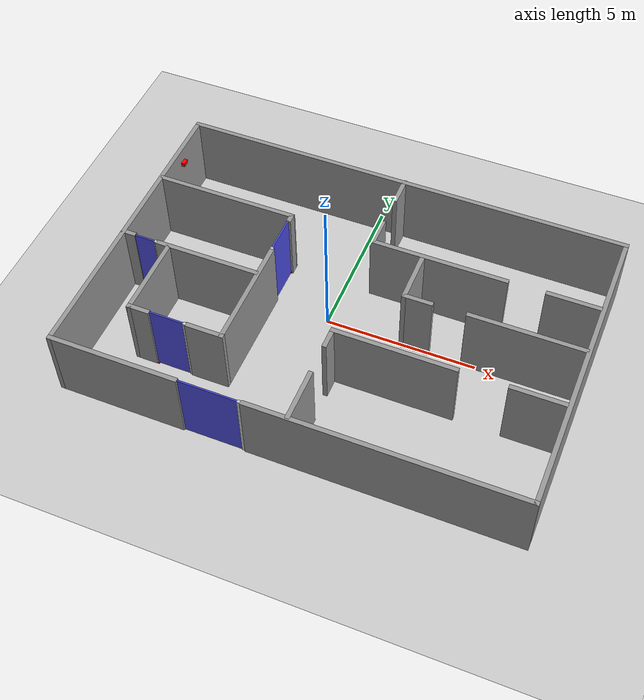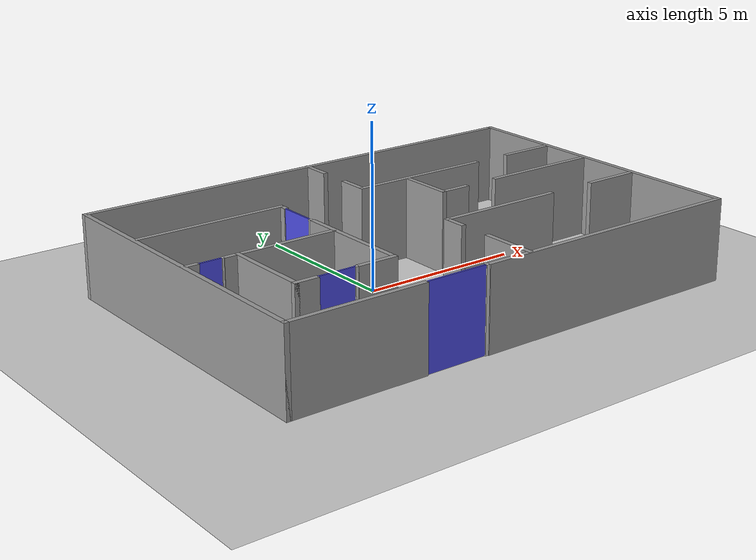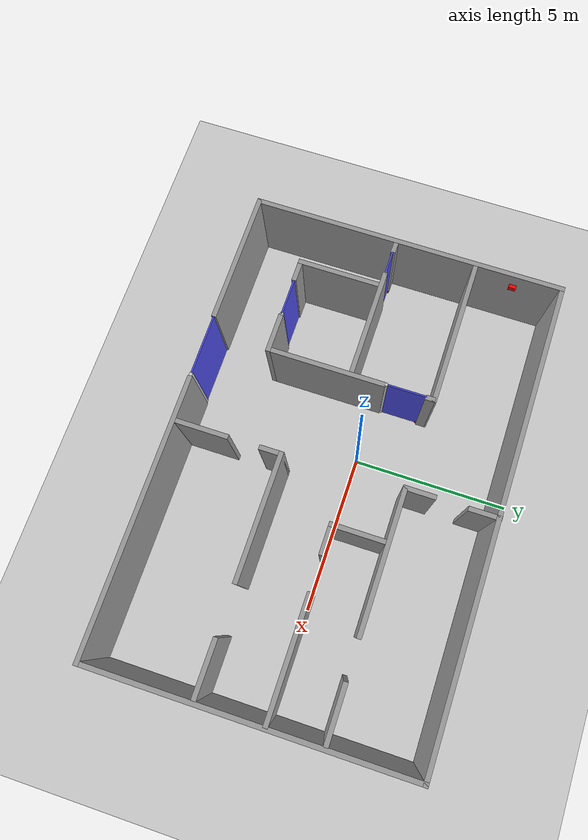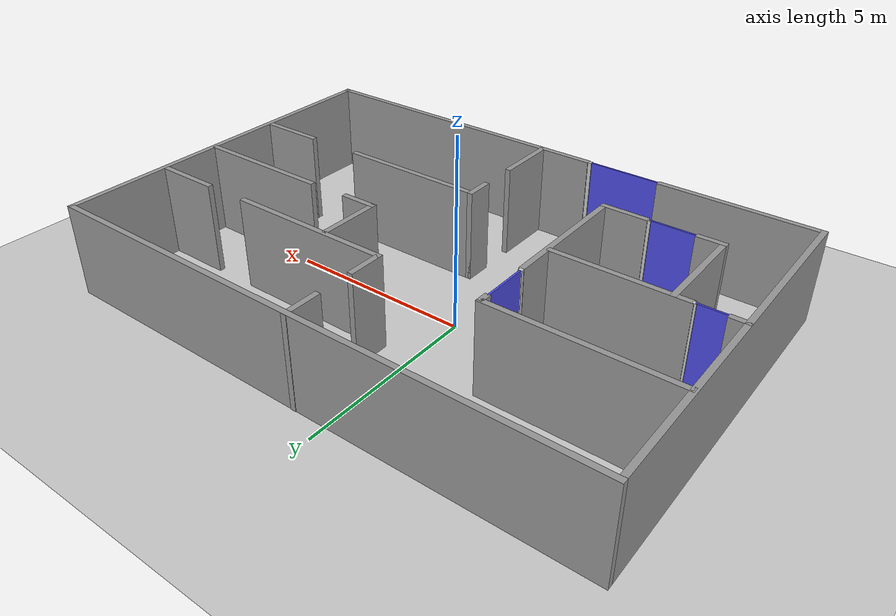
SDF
<sdf version="1.7">
 <world name="default">
  <model name="ground_plane">
   <static>1</static>
   <link name="link">
    <collision name="collision">
     <geometry><plane><normal>0 0 1</normal><size>100 100</size></plane></geometry>
     <surface><friction><ode><mu>100</mu><mu2>50</mu2></ode></friction></surface>
    </collision>
    <visual name="visual">
     <cast_shadows>0</cast_shadows>
     <geometry><plane><normal>0 0 1</normal><size>100 100</size></plane></geometry>
     <material>
      <script><uri>file://media/materials/scripts/gazebo.material</uri><name>Gazebo/Grey</name></script>
     </material>
    </visual>
   </link>
  </model>
  <model name="Edificio_Tim">
   <pose>0.861582 -0.45356 0 0 -0 0</pose>
   <link name="Wall_10">
    <collision name="Wall_10_Collision">
     <geometry><box><size>15 0.15 2.5</size></box></geometry>
     <pose>0 0 1.25 0 -0 0</pose>
    </collision>
    <visual name="Wall_10_Visual">
     <pose>0 0 1.25 0 -0 0</pose>
     <geometry><box><size>15 0.15 2.5</size></box></geometry>
     <material>
      <script><uri>file://media/materials/scripts/gazebo.material</uri><name>Gazebo/Grey</name></script>
      <ambient>1 1 1 1</ambient>
     </material>
     <meta><layer>0</layer></meta>
    </visual>
    <pose>-0 4.91887 0 0 -0 0</pose>
   </link>
   <link name="Wall_11">
    <collision name="Wall_11_Collision">
     <geometry><box><size>10 0.15 2.5</size></box></geometry>
     <pose>0 0 1.25 0 -0 0</pose>
    </collision>
    <visual name="Wall_11_Visual">
     <pose>0 0 1.25 0 -0 0</pose>
     <geometry><box><size>10 0.15 2.5</size></box></geometry>
     <material>
      <script><uri>file://media/materials/scripts/gazebo.material</uri><name>Gazebo/Grey</name></script>
      <ambient>1 1 1 1</ambient>
     </material>
     <meta><layer>0</layer></meta>
    </visual>
    <pose>7.425 -0.006132 0 0 -0 -1.5708</pose>
   </link>
   <link name="Wall_14">
    <collision name="Wall_14_Collision">
     <geometry><box><size>8.75 0.15 2.5</size></box></geometry>
     <pose>0 0 1.25 0 -0 0</pose>
    </collision>
    <visual name="Wall_14_Visual">
     <pose>0 0 1.25 0 -0 0</pose>
     <geometry><box><size>8.75 0.15 2.5</size></box></geometry>
     <material>
      <script><uri>file://media/materials/scripts/gazebo.material</uri><name>Gazebo/Grey</name></script>
      <ambient>1 1 1 1</ambient>
     </material>
     <meta><layer>0</layer></meta>
    </visual>
    <pose>3.125 -4.93113 0 0 -0 3.14159</pose>
   </link>
   <link name="Wall_16">
    <collision name="Wall_16_Collision">
     <geometry><box><size>4.75 0.15 2.5</size></box></geometry>
     <pose>0 0 1.25 0 -0 0</pose>
    </collision>
    <visual name="Wall_16_Visual">
     <pose>0 0 1.25 0 -0 0</pose>
     <geometry><box><size>4.75 0.15 2.5</size></box></geometry>
     <material>
      <script><uri>file://media/materials/scripts/gazebo.material</uri><name>Gazebo/Grey</name></script>
      <ambient>1 1 1 1</ambient>
     </material>
     <meta><layer>0</layer></meta>
    </visual>
    <pose>-5.07129 2.18819 0 0 -0 0</pose>
   </link>
   <link name="Wall_17">
    <collision name="Wall_17_Collision">
     <geometry><box><size>0.3 0.15 2.5</size></box></geometry>
     <pose>-0.3 0 1.25 0 -0 0</pose>
    </collision>
    <visual name="Wall_17_Visual">
     <pose>-0.3 0 1.25 0 -0 0</pose>
     <geometry><box><size>0.3 0.15 2.5</size></box></geometry>
     <material>
      <script><uri>file://media/materials/scripts/gazebo.material</uri><name>Gazebo/Grey</name></script>
      <ambient>1 1 1 1</ambient>
     </material>
     <meta><layer>0</layer></meta>
    </visual>
    <pose>-2.77129 1.76319 0 0 -0 -1.5708</pose>
   </link>
   <link name="Wall_19">
    <collision name="Wall_19_Collision">
     <geometry><box><size>3.75 0.15 2.5</size></box></geometry>
     <pose>0 0 1.25 0 -0 0</pose>
    </collision>
    <visual name="Wall_19_Visual">
     <pose>0 0 1.25 0 -0 0</pose>
     <geometry><box><size>3.75 0.15 2.5</size></box></geometry>
     <material>
      <script><uri>file://media/materials/scripts/gazebo.material</uri><name>Gazebo/Grey</name></script>
      <ambient>1 1 1 1</ambient>
     </material>
     <meta><layer>0</layer></meta>
    </visual>
    <pose>-2.77141 -1.2034 0 0 -0 -1.5708</pose>
   </link>
   <link name="Wall_20">
    <collision name="Wall_20_Collision">
     <geometry><box><size>1.25 0.15 2.5</size></box></geometry>
     <pose>0 0 1.25 0 -0 0</pose>
    </collision>
    <visual name="Wall_20_Visual">
     <pose>0 0 1.25 0 -0 0</pose>
     <geometry><box><size>1.25 0.15 2.5</size></box></geometry>
     <material>
      <script><uri>file://media/materials/scripts/gazebo.material</uri><name>Gazebo/Grey</name></script>
      <ambient>1 1 1 1</ambient>
     </material>
     <meta><layer>0</layer></meta>
    </visual>
    <pose>-3.3214 -3.0034 0 0 -0 3.14159</pose>
   </link>
   <link name="Wall_22">
    <collision name="Wall_22_Collision">
     <geometry><box><size>0.75 0.15 2.5</size></box></geometry>
     <pose>0 0 1.25 0 -0 0</pose>
    </collision>
    <visual name="Wall_22_Visual">
     <pose>0 0 1.25 0 -0 0</pose>
     <geometry><box><size>0.75 0.15 2.5</size></box></geometry>
     <material>
      <script><uri>file://media/materials/scripts/gazebo.material</uri><name>Gazebo/Grey</name></script>
      <ambient>1 1 1 1</ambient>
     </material>
     <meta><layer>0</layer></meta>
    </visual>
    <pose>-5.52001 -3.00636 0 0 -0 3.14159</pose>
   </link>
   <link name="Wall_30">
    <collision name="Wall_30_Collision">
     <geometry><box><size>0.5 0.15 2.5</size></box></geometry>
     <pose>0 0 1.25 0 -0 0</pose>
    </collision>
    <visual name="Wall_30_Visual">
     <pose>0 0 1.25 0 -0 0</pose>
     <geometry><box><size>0.5 0.15 2.5</size></box></geometry>
     <material>
      <script><uri>file://media/materials/scripts/gazebo.material</uri><name>Gazebo/Grey</name></script>
      <ambient>1 1 1 1</ambient>
     </material>
     <meta><layer>0</layer></meta>
    </visual>
    <pose>-7.24876 -0.382847 0 0 -0 0</pose>
   </link>
   <link name="Wall_32">
    <collision name="Wall_32_Collision">
     <geometry><box><size>3.5 0.15 2.5</size></box></geometry>
     <pose>0 0 1.25 0 -0 0</pose>
    </collision>
    <visual name="Wall_32_Visual">
     <pose>0 0 1.25 0 -0 0</pose>
     <geometry><box><size>3.5 0.15 2.5</size></box></geometry>
     <material>
      <script><uri>file://media/materials/scripts/gazebo.material</uri><name>Gazebo/Grey</name></script>
      <ambient>1 1 1 1</ambient>
     </material>
     <meta><layer>0</layer></meta>
    </visual>
    <pose>-4.52359 -0.403337 0 0 -0 0</pose>
   </link>
   <link name="Wall_34">
    <collision name="Wall_34_Collision">
     <geometry><box><size>2.75 0.15 2.5</size></box></geometry>
     <pose>0 0 1.25 0 -0 0</pose>
    </collision>
    <visual name="Wall_34_Visual">
     <pose>0 0 1.25 0 -0 0</pose>
     <geometry><box><size>2.75 0.15 2.5</size></box></geometry>
     <material>
      <script><uri>file://media/materials/scripts/gazebo.material</uri><name>Gazebo/Grey</name></script>
      <ambient>1 1 1 1</ambient>
     </material>
     <meta><layer>0</layer></meta>
    </visual>
    <pose>-5.82001 -1.70636 0 0 -0 1.5708</pose>
   </link>
   <link name="Wall_36">
    <collision name="Wall_36_Collision">
     <geometry><box><size>1.75 0.15 2.5</size></box></geometry>
     <pose>0 0 1.25 0 -0 0</pose>
    </collision>
    <visual name="Wall_36_Visual">
     <pose>0 0 1.25 0 -0 0</pose>
     <geometry><box><size>1.75 0.15 2.5</size></box></geometry>
     <material>
      <script><uri>file://media/materials/scripts/gazebo.material</uri><name>Gazebo/Grey</name></script>
      <ambient>1 1 1 1</ambient>
     </material>
     <meta><layer>0</layer></meta>
    </visual>
    <pose>0.185286 -4.08079 0 0 -0 1.5708</pose>
   </link>
   <link name="Wall_40">
    <collision name="Wall_40_Collision">
     <geometry><box><size>0.75 0.15 2.5</size></box></geometry>
     <pose>0 0 1.25 0 -0 0</pose>
    </collision>
    <visual name="Wall_40_Visual">
     <pose>0 0 1.25 0 -0 0</pose>
     <geometry><box><size>0.75 0.15 2.5</size></box></geometry>
     <material>
      <script><uri>file://media/materials/scripts/gazebo.material</uri><name>Gazebo/Grey</name></script>
      <ambient>1 1 1 1</ambient>
     </material>
     <meta><layer>0</layer></meta>
    </visual>
    <pose>0.185286 -1.88079 0 0 -0 1.5708</pose>
   </link>
   <link name="Wall_43">
    <collision name="Wall_43_Collision">
     <geometry><box><size>1.75 0.15 2.5</size></box></geometry>
     <pose>0 0 1.25 0 -0 0</pose>
    </collision>
    <visual name="Wall_43_Visual">
     <pose>0 0 1.25 0 -0 0</pose>
     <geometry><box><size>1.75 0.15 2.5</size></box></geometry>
     <material>
      <script><uri>file://media/materials/scripts/gazebo.material</uri><name>Gazebo/Grey</name></script>
      <ambient>1 1 1 1</ambient>
     </material>
     <meta><layer>0</layer></meta>
    </visual>
    <pose>6.48529 -1.58079 0 0 -0 3.14159</pose>
   </link>
   <link name="Wall_45">
    <collision name="Wall_45_Collision">
     <geometry><box><size>4 0.15 2.5</size></box></geometry>
     <pose>0 0 1.25 0 -0 0</pose>
    </collision>
    <visual name="Wall_45_Visual">
     <pose>0 0 1.25 0 -0 0</pose>
     <geometry><box><size>4 0.15 2.5</size></box></geometry>
     <material>
      <script><uri>file://media/materials/scripts/gazebo.material</uri><name>Gazebo/Grey</name></script>
      <ambient>1 1 1 1</ambient>
     </material>
     <meta><layer>0</layer></meta>
    </visual>
    <pose>2.11029 -1.58079 0 0 -0 0</pose>
   </link>
   <link name="Wall_48">
    <collision name="Wall_48_Collision">
     <geometry><box><size>1 0.15 2.5</size></box></geometry>
     <pose>0 0 1.25 0 -0 0</pose>
    </collision>
    <visual name="Wall_48_Visual">
     <pose>0 0 1.25 0 -0 0</pose>
     <geometry><box><size>1 0.15 2.5</size></box></geometry>
     <material>
      <script><uri>file://media/materials/scripts/gazebo.material</uri><name>Gazebo/Grey</name></script>
      <ambient>1 1 1 1</ambient>
     </material>
     <meta><layer>0</layer></meta>
    </visual>
    <pose>0.045366 4.50613 0 0 -0 -1.5708</pose>
   </link>
   <link name="Wall_56">
    <collision name="Wall_56_Collision">
     <geometry><box><size>1 0.15 2.5</size></box></geometry>
     <pose>0 0 1.25 0 -0 0</pose>
    </collision>
    <visual name="Wall_56_Visual">
     <pose>0 0 1.25 0 -0 0</pose>
     <geometry><box><size>1 0.15 2.5</size></box></geometry>
     <material>
      <script><uri>file://media/materials/scripts/gazebo.material</uri><name>Gazebo/Grey</name></script>
      <ambient>1 1 1 1</ambient>
     </material>
     <meta><layer>0</layer></meta>
    </visual>
    <pose>0.027876 2.56474 0 0 -0 -1.5708</pose>
   </link>
   <link name="Wall_57">
    <collision name="Wall_57_Collision">
     <geometry><box><size>4.5 0.15 2.5</size></box></geometry>
     <pose>0 0 1.25 0 -0 0</pose>
    </collision>
    <visual name="Wall_57_Visual">
     <pose>0 0 1.25 0 -0 0</pose>
     <geometry><box><size>4.5 0.15 2.5</size></box></geometry>
     <material>
      <script><uri>file://media/materials/scripts/gazebo.material</uri><name>Gazebo/Grey</name></script>
      <ambient>1 1 1 1</ambient>
     </material>
     <meta><layer>0</layer></meta>
    </visual>
    <pose>2.20288 2.13973 0 0 -0 0</pose>
   </link>
   <link name="Wall_6">
    <collision name="Wall_6_Collision">
     <geometry><box><size>10 0.15 2.5</size></box></geometry>
     <pose>0 0 1.25 0 -0 0</pose>
    </collision>
    <visual name="Wall_6_Visual">
     <pose>0 0 1.25 0 -0 0</pose>
     <geometry><box><size>10 0.15 2.5</size></box></geometry>
     <material>
      <script><uri>file://media/materials/scripts/gazebo.material</uri><name>Gazebo/Grey</name></script>
      <ambient>1 1 1 1</ambient>
     </material>
     <meta><layer>0</layer></meta>
    </visual>
    <pose>-7.425 -0.006132 0 0 -0 -1.5708</pose>
   </link>
   <link name="Wall_60">
    <collision name="Wall_60_Collision">
     <geometry><box><size>1.75 0.15 2.5</size></box></geometry>
     <pose>0 0 1.25 0 -0 0</pose>
    </collision>
    <visual name="Wall_60_Visual">
     <pose>0 0 1.25 0 -0 0</pose>
     <geometry><box><size>1.75 0.15 2.5</size></box></geometry>
     <material>
      <script><uri>file://media/materials/scripts/gazebo.material</uri><name>Gazebo/Grey</name></script>
      <ambient>1 1 1 1</ambient>
     </material>
     <meta><layer>0</layer></meta>
    </visual>
    <pose>6.49466 2.15021 0 0 -0 0</pose>
   </link>
   <link name="Wall_62">
    <collision name="Wall_62_Collision">
     <geometry><box><size>1.75 0.15 2.5</size></box></geometry>
     <pose>0 0 1.25 0 -0 0</pose>
    </collision>
    <visual name="Wall_62_Visual">
     <pose>0 0 1.25 0 -0 0</pose>
     <geometry><box><size>1.75 0.15 2.5</size></box></geometry>
     <material>
      <script><uri>file://media/materials/scripts/gazebo.material</uri><name>Gazebo/Grey</name></script>
      <ambient>1 1 1 1</ambient>
     </material>
     <meta><layer>0</layer></meta>
    </visual>
    <pose>1.68943 1.24527 0 0 -0 -1.5708</pose>
   </link>
   <link name="Wall_63">
    <collision name="Wall_63_Collision">
     <geometry><box><size>1 0.15 2.5</size></box></geometry>
     <pose>0 0 1.25 0 -0 0</pose>
    </collision>
    <visual name="Wall_63_Visual">
     <pose>0 0 1.25 0 -0 0</pose>
     <geometry><box><size>1 0.15 2.5</size></box></geometry>
     <material>
      <script><uri>file://media/materials/scripts/gazebo.material</uri><name>Gazebo/Grey</name></script>
      <ambient>1 1 1 1</ambient>
     </material>
     <meta><layer>0</layer></meta>
    </visual>
    <pose>2.11443 0.445272 0 0 -0 0</pose>
   </link>
   <link name="Wall_67">
    <collision name="Wall_67_Collision">
     <geometry><box><size>3.75 0.15 2.5</size></box></geometry>
     <pose>0 0 1.25 0 -0 0</pose>
    </collision>
    <visual name="Wall_67_Visual">
     <pose>0 0 1.25 0 -0 0</pose>
     <geometry><box><size>3.75 0.15 2.5</size></box></geometry>
     <material>
      <script><uri>file://media/materials/scripts/gazebo.material</uri><name>Gazebo/Grey</name></script>
      <ambient>1 1 1 1</ambient>
     </material>
     <meta><layer>0</layer></meta>
    </visual>
    <pose>5.53577 0.471166 0 0 -0 0</pose>
   </link>
   <link name="Wall_8">
    <collision name="Wall_8_Collision">
     <geometry><box><size>4.25 0.15 2.5</size></box></geometry>
     <pose>0 0 1.25 0 -0 0</pose>
    </collision>
    <visual name="Wall_8_Visual">
     <pose>0 0 1.25 0 -0 0</pose>
     <geometry><box><size>4.25 0.15 2.5</size></box></geometry>
     <material>
      <script><uri>file://media/materials/scripts/gazebo.material</uri><name>Gazebo/Grey</name></script>
      <ambient>1 1 1 1</ambient>
     </material>
     <meta><layer>0</layer></meta>
    </visual>
    <pose>-5.375 -4.93113 0 0 -0 0</pose>
   </link>
   <static>1</static>
  </model>
  <model name="Lidar_1">
   <link name="link_1">
    <inertial>
     <mass>0.00014111</mass>
     <inertia><ixx>7e-08</ixx><ixy>0</ixy><ixz>0</ixz><iyy>7e-08</iyy><iyz>0</iyz><izz>6e-08</izz></inertia>
    </inertial>
    <visual name="visual">
     <geometry><box><size>0.048286 0.048861 0.059852</size></box></geometry>
     <material>
      <lighting>1</lighting>
      <script><uri>file://media/materials/scripts/gazebo.material</uri><name>Gazebo/Grey</name></script>
      <shader type="pixel"><normal_map>__default__</normal_map></shader>
      <ambient>1 0 0 1</ambient>
      <diffuse>0.7 0.7 0.7 1</diffuse>
      <specular>0.01 0.01 0.01 1</specular>
      <emissive>0 0 0 1</emissive>
     </material>
    </visual>
    <collision name="collision">
     <geometry><box><size>0.048286 0.048861 0.059852</size></box></geometry>
     <surface>
      <friction>
       <ode><mu>1</mu><mu2>1</mu2><fdir1>0 0 0</fdir1><slip1>0</slip1><slip2>0</slip2></ode>
       <torsional>
        <coefficient>1</coefficient>
        <patch_radius>0</patch_radius>
        <surface_radius>0</surface_radius>
        <use_patch_radius>1</use_patch_radius>
        <ode><slip>0</slip></ode>
       </torsional>
      </friction>
      <bounce><restitution_coefficient>0</restitution_coefficient><threshold>1e+06</threshold></bounce>
      <contact>
       <collide_without_contact>0</collide_without_contact>
       <collide_without_contact_bitmask>1</collide_without_contact_bitmask>
       <collide_bitmask>1</collide_bitmask>
       <ode>
        <soft_cfm>0</soft_cfm>
        <soft_erp>0.2</soft_erp>
        <kp>1e+13</kp>
        <kd>1</kd>
        <max_vel>0.01</max_vel>
        <min_depth>0</min_depth>
       </ode>
       <bullet>
        <split_impulse>1</split_impulse>
        <split_impulse_penetration_threshold>-0.01</split_impulse_penetration_threshold>
        <soft_cfm>0</soft_cfm>
        <soft_erp>0.2</soft_erp>
        <kp>1e+13</kp>
        <kd>1</kd>
       </bullet>
      </contact>
     </surface>
    </collision>
   </link>
   <static>0</static>
   <pose>-4.25799 -3.50339 0.029927 2.6e-05 2e-06 -0.001225</pose>
  </model>
  <model name="Lidar_6">
   <link name="link_1">
    <inertial>
     <mass>0.00014111</mass>
     <inertia><ixx>7e-08</ixx><ixy>0</ixy><ixz>0</ixz><iyy>7e-08</iyy><iyz>0</iyz><izz>6e-08</izz></inertia>
    </inertial>
    <visual name="visual">
     <geometry><box><size>0.048286 0.048861 0.059852</size></box></geometry>
     <material>
      <lighting>1</lighting>
      <script><uri>file://media/materials/scripts/gazebo.material</uri><name>Gazebo/Grey</name></script>
      <shader type="pixel"><normal_map>__default__</normal_map></shader>
      <ambient>1 0 0 1</ambient>
      <diffuse>0.7 0.7 0.7 1</diffuse>
      <specular>0.01 0.01 0.01 1</specular>
      <emissive>0 0 0 1</emissive>
     </material>
    </visual>
    <collision name="collision">
     <geometry><box><size>0.048286 0.048861 0.059852</size></box></geometry>
     <surface>
      <friction>
       <ode><mu>1</mu><mu2>1</mu2><fdir1>0 0 0</fdir1><slip1>0</slip1><slip2>0</slip2></ode>
       <torsional>
        <coefficient>1</coefficient>
        <patch_radius>0</patch_radius>
        <surface_radius>0</surface_radius>
        <use_patch_radius>1</use_patch_radius>
        <ode><slip>0</slip></ode>
       </torsional>
      </friction>
      <bounce><restitution_coefficient>0</restitution_coefficient><threshold>1e+06</threshold></bounce>
      <contact>
       <collide_without_contact>0</collide_without_contact>
       <collide_without_contact_bitmask>1</collide_without_contact_bitmask>
       <collide_bitmask>1</collide_bitmask>
       <ode>
        <soft_cfm>0</soft_cfm>
        <soft_erp>0.2</soft_erp>
        <kp>1e+13</kp>
        <kd>1</kd>
        <max_vel>0.01</max_vel>
        <min_depth>0</min_depth>
       </ode>
       <bullet>
        <split_impulse>1</split_impulse>
        <split_impulse_penetration_threshold>-0.01</split_impulse_penetration_threshold>
        <soft_cfm>0</soft_cfm>
        <soft_erp>0.2</soft_erp>
        <kp>1e+13</kp>
        <kd>1</kd>
       </bullet>
      </contact>
     </surface>
    </collision>
   </link>
   <static>0</static>
   <pose>-1.90211 1.43438 0.029927 -2e-06 -2.8e-05 -1.57674</pose>
  </model>
  <model name="Lidar_8">
   <link name="link_1">
    <inertial>
     <mass>0.00014111</mass>
     <inertia><ixx>7e-08</ixx><ixy>0</ixy><ixz>0</ixz><iyy>7e-08</iyy><iyz>0</iyz><izz>6e-08</izz></inertia>
    </inertial>
    <visual name="visual">
     <geometry><box><size>0.048286 0.048861 0.059852</size></box></geometry>
     <material>
      <lighting>1</lighting>
      <script><uri>file://media/materials/scripts/gazebo.material</uri><name>Gazebo/Grey</name></script>
      <shader type="pixel"><normal_map>__default__</normal_map></shader>
      <ambient>1 0 0 1</ambient>
      <diffuse>0.7 0.7 0.7 1</diffuse>
      <specular>0.01 0.01 0.01 1</specular>
      <emissive>0 0 0 1</emissive>
     </material>
    </visual>
    <collision name="collision">
     <geometry><box><size>0.048286 0.048861 0.059852</size></box></geometry>
     <surface>
      <friction>
       <ode><mu>1</mu><mu2>1</mu2><fdir1>0 0 0</fdir1><slip1>0</slip1><slip2>0</slip2></ode>
       <torsional>
        <coefficient>1</coefficient>
        <patch_radius>0</patch_radius>
        <surface_radius>0</surface_radius>
        <use_patch_radius>1</use_patch_radius>
        <ode><slip>0</slip></ode>
       </torsional>
      </friction>
      <bounce><restitution_coefficient>0</restitution_coefficient><threshold>1e+06</threshold></bounce>
      <contact>
       <collide_without_contact>0</collide_without_contact>
       <collide_without_contact_bitmask>1</collide_without_contact_bitmask>
       <collide_bitmask>1</collide_bitmask>
       <ode>
        <soft_cfm>0</soft_cfm>
        <soft_erp>0.2</soft_erp>
        <kp>1e+13</kp>
        <kd>1</kd>
        <max_vel>0.01</max_vel>
        <min_depth>0</min_depth>
       </ode>
       <bullet>
        <split_impulse>1</split_impulse>
        <split_impulse_penetration_threshold>-0.01</split_impulse_penetration_threshold>
        <soft_cfm>0</soft_cfm>
        <soft_erp>0.2</soft_erp>
        <kp>1e+13</kp>
        <kd>1</kd>
       </bullet>
      </contact>
     </surface>
    </collision>
   </link>
   <static>0</static>
   <pose>-6.11282 -0.796846 0.029926 1e-06 -0 0.006373</pose>
  </model>
  <model name="Camera_2">
   <link name="link_1">
    <inertial>
     <mass>0.00014152</mass>
     <inertia><ixx>8.3e-07</ixx><ixy>0</ixy><ixz>0</ixz><iyy>4e-07</iyy><iyz>0</iyz><izz>7.7e-07</izz></inertia>
    </inertial>
    <gravity>0</gravity>
    <visual name="visual">
     <geometry><box><size>0.119276 0.225925 0.14044</size></box></geometry>
     <material>
      <lighting>1</lighting>
      <script><uri>file://media/materials/scripts/gazebo.material</uri><name>Gazebo/Grey</name></script>
      <shader type="pixel"><normal_map>__default__</normal_map></shader>
      <ambient>1 0 0 1</ambient>
      <diffuse>0.7 0.7 0.7 1</diffuse>
      <specular>0.01 0.01 0.01 1</specular>
      <emissive>0 0 0 1</emissive>
     </material>
    </visual>
    <collision name="collision">
     <geometry><box><size>0.119276 0.225925 0.14044</size></box></geometry>
     <surface>
      <friction>
       <ode><mu>1</mu><mu2>1</mu2><fdir1>0 0 0</fdir1><slip1>0</slip1><slip2>0</slip2></ode>
       <torsional>
        <coefficient>1</coefficient>
        <patch_radius>0</patch_radius>
        <surface_radius>0</surface_radius>
        <use_patch_radius>1</use_patch_radius>
        <ode><slip>0</slip></ode>
       </torsional>
      </friction>
      <bounce><restitution_coefficient>0</restitution_coefficient><threshold>1e+06</threshold></bounce>
      <contact>
       <collide_without_contact>0</collide_without_contact>
       <collide_without_contact_bitmask>1</collide_without_contact_bitmask>
       <collide_bitmask>1</collide_bitmask>
       <ode>
        <soft_cfm>0</soft_cfm>
        <soft_erp>0.2</soft_erp>
        <kp>1e+13</kp>
        <kd>1</kd>
        <max_vel>0.01</max_vel>
        <min_depth>0</min_depth>
       </ode>
       <bullet>
        <split_impulse>1</split_impulse>
        <split_impulse_penetration_threshold>-0.01</split_impulse_penetration_threshold>
        <soft_cfm>0</soft_cfm>
        <soft_erp>0.2</soft_erp>
        <kp>1e+13</kp>
        <kd>1</kd>
       </bullet>
      </contact>
     </surface>
    </collision>
    <sensor name="camera_sensor2" type="camera">
     <update_rate>30</update_rate>
     <camera>
      <horizontal_fov>2.5</horizontal_fov>
      <image><width>800</width><height>600</height><format>R8G8B8</format></image>
      <clip><near>0.1</near><far>100</far></clip>
      <distortion><k1>-0.3</k1><k2>0.1</k2><p1>0</p1><p2>0</p2></distortion>
     </camera>
     <plugin name="camera_plugin" filename="libcamera_plugin.so"/>
    </sensor>
   </link>
   <static>0</static>
   <pose>-6.42835 3.03849 2 0 -0 0</pose>
  </model>
  <model name="door_1">
   <link name="door_frame">
    <pose>0.705849 0 1.25 0 -0 0</pose>
    <kinematic>1</kinematic>
    <inertial>
     <inertia><ixx>1</ixx><ixy>0</ixy><ixz>0</ixz><iyy>1</iyy><iyz>0</iyz><izz>1</izz></inertia>
     <mass>1</mass>
    </inertial>
    <visual name="frame_visual">
     <geometry><box><size>0.1 0.1 2.5</size></box></geometry>
     <material>
      <ambient>0.7 0.7 0.7 1</ambient>
      <diffuse>0.8 0.8 0.8 1</diffuse>
      <shader type="pixel"/>
      <script><name>ModelPreview_2::door_frame::frame_visual_MATERIAL_</name><uri>__default__</uri></script>
     </material>
    </visual>
    <collision name="frame_collision">
     <geometry><box><size>0.1 0.1 2.5</size></box></geometry>
     <surface>
      <friction>
       <ode><mu>1</mu><mu2>1</mu2><fdir1>0 0 0</fdir1><slip1>0</slip1><slip2>0</slip2></ode>
       <torsional>
        <coefficient>1</coefficient>
        <patch_radius>0</patch_radius>
        <surface_radius>0</surface_radius>
        <use_patch_radius>1</use_patch_radius>
        <ode><slip>0</slip></ode>
       </torsional>
      </friction>
      <bounce><restitution_coefficient>0</restitution_coefficient><threshold>1e+06</threshold></bounce>
      <contact>
       <collide_without_contact>0</collide_without_contact>
       <collide_without_contact_bitmask>1</collide_without_contact_bitmask>
       <collide_bitmask>1</collide_bitmask>
       <ode>
        <soft_cfm>0</soft_cfm>
        <soft_erp>0.2</soft_erp>
        <kp>1e+13</kp>
        <kd>1</kd>
        <max_vel>0.01</max_vel>
        <min_depth>0</min_depth>
       </ode>
       <bullet>
        <split_impulse>1</split_impulse>
        <split_impulse_penetration_threshold>-0.01</split_impulse_penetration_threshold>
        <soft_cfm>0</soft_cfm>
        <soft_erp>0.2</soft_erp>
        <kp>1e+13</kp>
        <kd>1</kd>
       </bullet>
      </contact>
     </surface>
    </collision>
   </link>
   <link name="door">
    <kinematic>1</kinematic>
    <pose>-0.288809 0 1.25 0 -0 0</pose>
    <inertial>
     <inertia><ixx>1.96777</ixx><ixy>0</ixy><ixz>0</ixz><iyy>3.08912</iyy><iyz>0</iyz><izz>1.12292</izz></inertia>
     <mass>3.77661</mass>
    </inertial>
    <visual name="door_visual">
     <geometry><box><size>1.88826 0.05 2.5</size></box></geometry>
     <material>
      <ambient>0.2 0.2 0.8 1</ambient>
      <diffuse>0.3 0.3 0.9 1</diffuse>
      <shader type="pixel"/>
      <script><name>ModelPreview_2::door::door_visual_MATERIAL_</name><uri>__default__</uri></script>
     </material>
    </visual>
    <collision name="door_collision">
     <geometry><box><size>1.88826 0.05 2.5</size></box></geometry>
     <surface>
      <friction>
       <ode><mu>1</mu><mu2>1</mu2><fdir1>0 0 0</fdir1><slip1>0</slip1><slip2>0</slip2></ode>
       <torsional>
        <coefficient>1</coefficient>
        <patch_radius>0</patch_radius>
        <surface_radius>0</surface_radius>
        <use_patch_radius>1</use_patch_radius>
        <ode><slip>0</slip></ode>
       </torsional>
      </friction>
      <bounce><restitution_coefficient>0</restitution_coefficient><threshold>1e+06</threshold></bounce>
      <contact>
       <collide_without_contact>0</collide_without_contact>
       <collide_without_contact_bitmask>1</collide_without_contact_bitmask>
       <collide_bitmask>1</collide_bitmask>
       <ode>
        <soft_cfm>0</soft_cfm>
        <soft_erp>0.2</soft_erp>
        <kp>1e+13</kp>
        <kd>1</kd>
        <max_vel>0.01</max_vel>
        <min_depth>0</min_depth>
       </ode>
       <bullet>
        <split_impulse>1</split_impulse>
        <split_impulse_penetration_threshold>-0.01</split_impulse_penetration_threshold>
        <soft_cfm>0</soft_cfm>
        <soft_erp>0.2</soft_erp>
        <kp>1e+13</kp>
        <kd>1</kd>
       </bullet>
      </contact>
     </surface>
    </collision>
   </link>
   <joint name="door_joint" type="prismatic">
    <parent>door_frame</parent>
    <child>door</child>
    <axis>
     <xyz>1 0 0</xyz>
     <limit><lower>0</lower><upper>2</upper><effort>-1</effort><velocity>-1</velocity></limit>
     <dynamics>
      <spring_reference>0</spring_reference>
      <spring_stiffness>0</spring_stiffness>
      <damping>0</damping>
      <friction>0</friction>
     </dynamics>
    </axis>
    <physics>
     <ode><limit><cfm>0</cfm><erp>0.2</erp></limit><suspension><cfm>0</cfm><erp>0.2</erp></suspension></ode>
    </physics>
   </joint>
   <static>0</static>
   <plugin name="door_control_plugin" filename="libdoor_control_plugin.so">
    <door_joint>door_joint</door_joint>
    <speed>1.0</speed>
    <open_target>2.0</open_target>
    <close_target>0.0</close_target>
   </plugin>
   <pose>-1.1447 -5.3842 0 0 -0 0</pose>
  </model>
  <model name="door_2">
   <link name="door_frame">
    <pose>0.25 0 1.25 0 -0 0</pose>
    <kinematic>1</kinematic>
    <inertial>
     <inertia><ixx>1</ixx><ixy>0</ixy><ixz>0</ixz><iyy>1</iyy><iyz>0</iyz><izz>1</izz></inertia>
     <mass>1</mass>
    </inertial>
    <visual name="frame_visual">
     <geometry><box><size>0.1 0.1 2.5</size></box></geometry>
     <material>
      <ambient>0.7 0.7 0.7 1</ambient>
      <diffuse>0.8 0.8 0.8 1</diffuse>
      <shader type="pixel"/>
      <script><name>ModelPreview_2::door_frame::frame_visual_MATERIAL_</name><uri>__default__</uri></script>
     </material>
    </visual>
    <collision name="frame_collision">
     <geometry><box><size>0.1 0.1 2.5</size></box></geometry>
     <surface>
      <friction>
       <ode><mu>1</mu><mu2>1</mu2><fdir1>0 0 0</fdir1><slip1>0</slip1><slip2>0</slip2></ode>
       <torsional>
        <coefficient>1</coefficient>
        <patch_radius>0</patch_radius>
        <surface_radius>0</surface_radius>
        <use_patch_radius>1</use_patch_radius>
        <ode><slip>0</slip></ode>
       </torsional>
      </friction>
      <bounce><restitution_coefficient>0</restitution_coefficient><threshold>1e+06</threshold></bounce>
      <contact>
       <collide_without_contact>0</collide_without_contact>
       <collide_without_contact_bitmask>1</collide_without_contact_bitmask>
       <collide_bitmask>1</collide_bitmask>
       <ode>
        <soft_cfm>0</soft_cfm>
        <soft_erp>0.2</soft_erp>
        <kp>1e+13</kp>
        <kd>1</kd>
        <max_vel>0.01</max_vel>
        <min_depth>0</min_depth>
       </ode>
       <bullet>
        <split_impulse>1</split_impulse>
        <split_impulse_penetration_threshold>-0.01</split_impulse_penetration_threshold>
        <soft_cfm>0</soft_cfm>
        <soft_erp>0.2</soft_erp>
        <kp>1e+13</kp>
        <kd>1</kd>
       </bullet>
      </contact>
     </surface>
    </collision>
   </link>
   <link name="door">
    <kinematic>1</kinematic>
    <pose>-0.335256 0 1.25 0 -0 0</pose>
    <inertial>
     <inertia><ixx>1.2306</ixx><ixy>0</ixy><ixz>0</ixz><iyy>1.50458</iyy><iyz>0</iyz><izz>0.27496</izz></inertia>
     <mass>2.36181</mass>
    </inertial>
    <visual name="door_visual">
     <geometry><box><size>1.1809 0.05 2.5</size></box></geometry>
     <material>
      <ambient>0.2 0.2 0.8 1</ambient>
      <diffuse>0.3 0.3 0.9 1</diffuse>
      <shader type="pixel"/>
      <script><name>ModelPreview_2::door::door_visual_MATERIAL_</name><uri>__default__</uri></script>
     </material>
    </visual>
    <collision name="door_collision">
     <geometry><box><size>1.1809 0.05 2.5</size></box></geometry>
     <surface>
      <friction>
       <ode><mu>1</mu><mu2>1</mu2><fdir1>0 0 0</fdir1><slip1>0</slip1><slip2>0</slip2></ode>
       <torsional>
        <coefficient>1</coefficient>
        <patch_radius>0</patch_radius>
        <surface_radius>0</surface_radius>
        <use_patch_radius>1</use_patch_radius>
        <ode><slip>0</slip></ode>
       </torsional>
      </friction>
      <bounce><restitution_coefficient>0</restitution_coefficient><threshold>1e+06</threshold></bounce>
      <contact>
       <collide_without_contact>0</collide_without_contact>
       <collide_without_contact_bitmask>1</collide_without_contact_bitmask>
       <collide_bitmask>1</collide_bitmask>
       <ode>
        <soft_cfm>0</soft_cfm>
        <soft_erp>0.2</soft_erp>
        <kp>1e+13</kp>
        <kd>1</kd>
        <max_vel>0.01</max_vel>
        <min_depth>0</min_depth>
       </ode>
       <bullet>
        <split_impulse>1</split_impulse>
        <split_impulse_penetration_threshold>-0.01</split_impulse_penetration_threshold>
        <soft_cfm>0</soft_cfm>
        <soft_erp>0.2</soft_erp>
        <kp>1e+13</kp>
        <kd>1</kd>
       </bullet>
      </contact>
     </surface>
    </collision>
   </link>
   <joint name="door_joint" type="prismatic">
    <parent>door_frame</parent>
    <child>door</child>
    <axis>
     <xyz>1 0 0</xyz>
     <limit><lower>0</lower><upper>1.1</upper><effort>-1</effort><velocity>-1</velocity></limit>
     <dynamics>
      <spring_reference>0</spring_reference>
      <spring_stiffness>0</spring_stiffness>
      <damping>0</damping>
      <friction>0</friction>
     </dynamics>
    </axis>
    <physics>
     <ode><limit><cfm>0</cfm><erp>0.2</erp></limit><suspension><cfm>0</cfm><erp>0.2</erp></suspension></ode>
    </physics>
   </joint>
   <static>0</static>
   <plugin name="door_control_plugin" filename="libdoor_control_plugin.so">
    <door_joint>door_joint</door_joint>
    <speed>1.0</speed>
    <open_target>1.1</open_target>
    <close_target>0.0</close_target>
   </plugin>
   <pose>-3.3612 -3.45338 0 0 -0 0</pose>
  </model>
  <model name="door_3">
   <link name="door_frame">
    <pose>0.25 0 1.25 0 -0 0</pose>
    <kinematic>1</kinematic>
    <inertial>
     <inertia><ixx>1</ixx><ixy>0</ixy><ixz>0</ixz><iyy>1</iyy><iyz>0</iyz><izz>1</izz></inertia>
     <mass>1</mass>
    </inertial>
    <visual name="frame_visual">
     <geometry><box><size>0.1 0.1 2.5</size></box></geometry>
     <material>
      <ambient>0.7 0.7 0.7 1</ambient>
      <diffuse>0.8 0.8 0.8 1</diffuse>
      <shader type="pixel"/>
      <script><name>ModelPreview_1::door_frame::frame_visual_MATERIAL_</name><uri>__default__</uri></script>
     </material>
    </visual>
    <collision name="frame_collision">
     <geometry><box><size>0.1 0.1 2.5</size></box></geometry>
     <surface>
      <friction>
       <ode><mu>1</mu><mu2>1</mu2><fdir1>0 0 0</fdir1><slip1>0</slip1><slip2>0</slip2></ode>
       <torsional>
        <coefficient>1</coefficient>
        <patch_radius>0</patch_radius>
        <surface_radius>0</surface_radius>
        <use_patch_radius>1</use_patch_radius>
        <ode><slip>0</slip></ode>
       </torsional>
      </friction>
      <bounce><restitution_coefficient>0</restitution_coefficient><threshold>1e+06</threshold></bounce>
      <contact>
       <collide_without_contact>0</collide_without_contact>
       <collide_without_contact_bitmask>1</collide_without_contact_bitmask>
       <collide_bitmask>1</collide_bitmask>
       <ode>
        <soft_cfm>0</soft_cfm>
        <soft_erp>0.2</soft_erp>
        <kp>1e+13</kp>
        <kd>1</kd>
        <max_vel>0.01</max_vel>
        <min_depth>0</min_depth>
       </ode>
       <bullet>
        <split_impulse>1</split_impulse>
        <split_impulse_penetration_threshold>-0.01</split_impulse_penetration_threshold>
        <soft_cfm>0</soft_cfm>
        <soft_erp>0.2</soft_erp>
        <kp>1e+13</kp>
        <kd>1</kd>
       </bullet>
      </contact>
     </surface>
    </collision>
   </link>
   <link name="door">
    <kinematic>1</kinematic>
    <pose>-0.121545 0 1.25 0 -0 0</pose>
    <inertial>
     <inertia>
      <ixx>0.75177</ixx>
      <ixy>0</ixy>
      <ixz>0</ixz>
      <iyy>0.814042</iyy>
      <iyz>0</iyz>
      <izz>0.062873</izz>
     </inertia>
     <mass>1.44282</mass>
    </inertial>
    <visual name="door_visual">
     <geometry><box><size>0.721399 0.05 2.5</size></box></geometry>
     <material>
      <ambient>0.2 0.2 0.8 1</ambient>
      <diffuse>0.3 0.3 0.9 1</diffuse>
      <shader type="pixel"/>
      <script><name>ModelPreview_1::door::door_visual_MATERIAL_</name><uri>__default__</uri></script>
     </material>
    </visual>
    <collision name="door_collision">
     <geometry><box><size>0.721399 0.05 2.5</size></box></geometry>
     <surface>
      <friction>
       <ode><mu>1</mu><mu2>1</mu2><fdir1>0 0 0</fdir1><slip1>0</slip1><slip2>0</slip2></ode>
       <torsional>
        <coefficient>1</coefficient>
        <patch_radius>0</patch_radius>
        <surface_radius>0</surface_radius>
        <use_patch_radius>1</use_patch_radius>
        <ode><slip>0</slip></ode>
       </torsional>
      </friction>
      <bounce><restitution_coefficient>0</restitution_coefficient><threshold>1e+06</threshold></bounce>
      <contact>
       <collide_without_contact>0</collide_without_contact>
       <collide_without_contact_bitmask>1</collide_without_contact_bitmask>
       <collide_bitmask>1</collide_bitmask>
       <ode>
        <soft_cfm>0</soft_cfm>
        <soft_erp>0.2</soft_erp>
        <kp>1e+13</kp>
        <kd>1</kd>
        <max_vel>0.01</max_vel>
        <min_depth>0</min_depth>
       </ode>
       <bullet>
        <split_impulse>1</split_impulse>
        <split_impulse_penetration_threshold>-0.01</split_impulse_penetration_threshold>
        <soft_cfm>0</soft_cfm>
        <soft_erp>0.2</soft_erp>
        <kp>1e+13</kp>
        <kd>1</kd>
       </bullet>
      </contact>
     </surface>
    </collision>
   </link>
   <joint name="door_joint" type="prismatic">
    <parent>door_frame</parent>
    <child>door</child>
    <axis>
     <xyz>1 0 0</xyz>
     <limit><lower>0</lower><upper>1</upper><effort>-1</effort><velocity>-1</velocity></limit>
     <dynamics>
      <spring_reference>0</spring_reference>
      <spring_stiffness>0</spring_stiffness>
      <damping>0</damping>
      <friction>0</friction>
     </dynamics>
    </axis>
    <physics>
     <ode><limit><cfm>0</cfm><erp>0.2</erp></limit><suspension><cfm>0</cfm><erp>0.2</erp></suspension></ode>
    </physics>
   </joint>
   <static>0</static>
   <plugin name="door_control_plugin" filename="libdoor_control_plugin.so">
    <door_joint>door_joint</door_joint>
    <speed>1.0</speed>
    <open_target>1.0</open_target>
    <close_target>0.0</close_target>
   </plugin>
   <pose>-5.66385 -0.853123 0 0 -0 0</pose>
  </model>
  <model name="door_7">
   <link name="door_frame">
    <pose>0.25 0 1.25 0 -0 0</pose>
    <kinematic>1</kinematic>
    <inertial>
     <inertia><ixx>1</ixx><ixy>0</ixy><ixz>0</ixz><iyy>1</iyy><iyz>0</iyz><izz>1</izz></inertia>
     <mass>1</mass>
    </inertial>
    <visual name="frame_visual">
     <geometry><box><size>0.1 0.1 2.5</size></box></geometry>
     <material>
      <ambient>0.7 0.7 0.7 1</ambient>
      <diffuse>0.8 0.8 0.8 1</diffuse>
      <shader type="pixel"/>
      <script><name>ModelPreview_1::door_frame::frame_visual_MATERIAL_</name><uri>__default__</uri></script>
     </material>
    </visual>
    <collision name="frame_collision">
     <geometry><box><size>0.1 0.1 2.5</size></box></geometry>
     <surface>
      <friction>
       <ode><mu>1</mu><mu2>1</mu2><fdir1>0 0 0</fdir1><slip1>0</slip1><slip2>0</slip2></ode>
       <torsional>
        <coefficient>1</coefficient>
        <patch_radius>0</patch_radius>
        <surface_radius>0</surface_radius>
        <use_patch_radius>1</use_patch_radius>
        <ode><slip>0</slip></ode>
       </torsional>
      </friction>
      <bounce><restitution_coefficient>0</restitution_coefficient><threshold>1e+06</threshold></bounce>
      <contact>
       <collide_without_contact>0</collide_without_contact>
       <collide_without_contact_bitmask>1</collide_without_contact_bitmask>
       <collide_bitmask>1</collide_bitmask>
       <ode>
        <soft_cfm>0</soft_cfm>
        <soft_erp>0.2</soft_erp>
        <kp>1e+13</kp>
        <kd>1</kd>
        <max_vel>0.01</max_vel>
        <min_depth>0</min_depth>
       </ode>
       <bullet>
        <split_impulse>1</split_impulse>
        <split_impulse_penetration_threshold>-0.01</split_impulse_penetration_threshold>
        <soft_cfm>0</soft_cfm>
        <soft_erp>0.2</soft_erp>
        <kp>1e+13</kp>
        <kd>1</kd>
       </bullet>
      </contact>
     </surface>
    </collision>
   </link>
   <link name="door">
    <kinematic>1</kinematic>
    <pose>-0.4 -0 1.25 0 -0 0</pose>
    <inertial>
     <inertia>
      <ixx>0.606619</ixx>
      <ixy>0</ixy>
      <ixz>0</ixz>
      <iyy>0.639253</iyy>
      <iyz>0</iyz>
      <izz>0.0331193</izz>
     </inertia>
     <mass>1.16424</mass>
    </inertial>
    <visual name="door_visual">
     <geometry><box><size>1.2 0.05 2.5</size></box></geometry>
     <material>
      <ambient>0.2 0.2 0.8 1</ambient>
      <diffuse>0.3 0.3 0.9 1</diffuse>
      <shader type="pixel"/>
      <script><name>ModelPreview_1::door::door_visual_MATERIAL_</name><uri>__default__</uri></script>
     </material>
    </visual>
    <collision name="door_collision">
     <geometry><box><size>1.2 0.05 2.5</size></box></geometry>
     <surface>
      <friction>
       <ode><mu>1</mu><mu2>1</mu2><fdir1>0 0 0</fdir1><slip1>0</slip1><slip2>0</slip2></ode>
       <torsional>
        <coefficient>1</coefficient>
        <patch_radius>0</patch_radius>
        <surface_radius>0</surface_radius>
        <use_patch_radius>1</use_patch_radius>
        <ode><slip>0</slip></ode>
       </torsional>
      </friction>
      <bounce><restitution_coefficient>0</restitution_coefficient><threshold>1e+06</threshold></bounce>
      <contact>
       <collide_without_contact>0</collide_without_contact>
       <collide_without_contact_bitmask>1</collide_without_contact_bitmask>
       <collide_bitmask>1</collide_bitmask>
       <ode>
        <soft_cfm>0</soft_cfm>
        <soft_erp>0.2</soft_erp>
        <kp>1e+13</kp>
        <kd>1</kd>
        <max_vel>0.01</max_vel>
        <min_depth>0</min_depth>
       </ode>
       <bullet>
        <split_impulse>1</split_impulse>
        <split_impulse_penetration_threshold>-0.01</split_impulse_penetration_threshold>
        <soft_cfm>0</soft_cfm>
        <soft_erp>0.2</soft_erp>
        <kp>1e+13</kp>
        <kd>1</kd>
       </bullet>
      </contact>
     </surface>
    </collision>
   </link>
   <joint name="door_joint" type="prismatic">
    <parent>door_frame</parent>
    <child>door</child>
    <axis>
     <xyz>1 0 0</xyz>
     <limit><lower>0</lower><upper>1</upper><effort>-1</effort><velocity>-1</velocity></limit>
     <dynamics>
      <spring_reference>0</spring_reference>
      <spring_stiffness>0</spring_stiffness>
      <damping>0</damping>
      <friction>0</friction>
     </dynamics>
    </axis>
    <physics>
     <ode><limit><cfm>0</cfm><erp>0.2</erp></limit><suspension><cfm>0</cfm><erp>0.2</erp></suspension></ode>
    </physics>
   </joint>
   <static>0</static>
   <plugin name="door_control_plugin" filename="libdoor_control_plugin.so">
    <door_joint>door_joint</door_joint>
    <speed>1.0</speed>
    <open_target>1</open_target>
    <close_target>0.0</close_target>
   </plugin>
   <pose>-1.92829 0.48974 0 0 0 -1.56911</pose>
  </model>
 </world>
</sdf>
